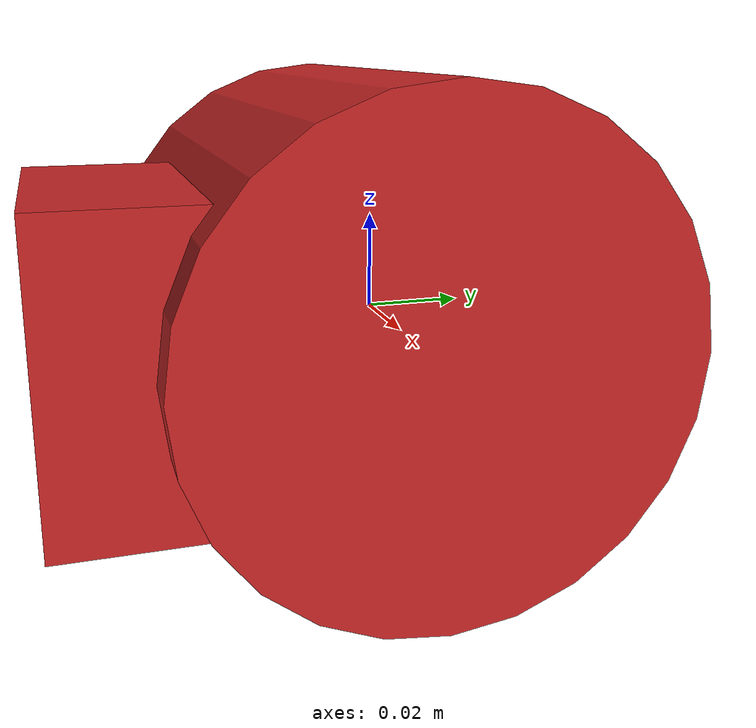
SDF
<?xml version="1.0" ?>
    <sdf version="1.6">
      <model name="hd_camera">
        <pose>0 0 0 0 0 0</pose>
        <static>true</static>
        <link name="hd_camera_link">
          <inertial>
            <mass>1</mass>
            <inertia>
              <ixx>0.166667</ixx>
              <ixy>0</ixy>
              <ixz>0</ixz>
              <iyy>0.166667</iyy>
              <iyz>0</iyz>
              <izz>0.166667</izz>
            </inertia>
            <pose>0 0 0 0 -0 0</pose>
          </inertial>
          <collision name='collision'>
            <geometry>
              <box>
                <size>1 1 1</size>
              </box>
            </geometry>
            <max_contacts>10</max_contacts>
            <surface>
              <contact>
                <ode/>
              </contact>
              <bounce/>
              <friction>
                <torsional>
                  <ode/>
                </torsional>
                <ode/>
              </friction>
            </surface>
          </collision>
          <visual name='visual'>
            <pose>0 0 0 0 1.5708 0</pose>
            <geometry>
              <cylinder>
                <length>0.1</length>
                <radius>0.05</radius>
              </cylinder>
            </geometry>
            <material>
              <script>
                <name>Gazebo/Red</name>
                <uri>file://media/materials/scripts/gazebo.material</uri>
              </script>
            </material>
          </visual>
          <visual name='visual1'>
            <pose>-0.005 0 0 0 1.5708 0</pose>
            <geometry>
              <cylinder>
                <length>0.1</length>
                <radius>0.04</radius>
              </cylinder>
            </geometry>
            <material>
              <script>
                <name>Gazebo/Black</name>
                <uri>file://media/materials/scripts/gazebo.material</uri>
              </script>
            </material>
          </visual>
          <visual name='visual2'>
            <pose>0.01 -0.04 0 0 0 0</pose>
            <geometry>
              <box>
                <size>0.06 0.06 0.06</size>
              </box>
            </geometry>
            <material>
              <script>
                <name>Gazebo/Red</name>
                <uri>file://media/materials/scripts/gazebo.material</uri>
              </script>
            </material>
          </visual>
          <self_collide>0</self_collide>
          <enable_wind>0</enable_wind>
          <kinematic>0</kinematic>

          <sensor type="camera" name="$hd_camera_sensor">
            <update_rate>120.0</update_rate>
            <camera name="hd_camera">
              <pose>0 0 0 0 0 3.14159</pose>
              <horizontal_fov>1.501</horizontal_fov>
              <image>
                <width>1280</width>
                <height>720</height>
                <format>R8G8B8</format>
              </image>
              <clip>
                <near>0.02</near>
                <far>300</far>
              </clip>
              <noise>
                <type>gaussian</type>
                <mean>0.0</mean>
                <stddev>0.007</stddev>
              </noise>
            </camera>
            <plugin name="camera_controller" filename="libgazebo_ros_camera.so">
              <alwaysOn>true</alwaysOn>
              <updateRate>0.0</updateRate>
              <cameraName>ast_source_cam</cameraName>
              <imageTopicName>image_raw</imageTopicName>
              <cameraInfoTopicName>camera_info</cameraInfoTopicName>
              <frameName>hd_camera_link</frameName>
              <hackBaseline>0.07</hackBaseline>
              <distortionK1>0.0</distortionK1>
              <distortionK2>0.0</distortionK2>
              <distortionK3>0.0</distortionK3>
              <distortionT1>0.0</distortionT1>
              <distortionT2>0.0</distortionT2>
            </plugin>
          </sensor>

        </link>
      </model>
    </sdf>
